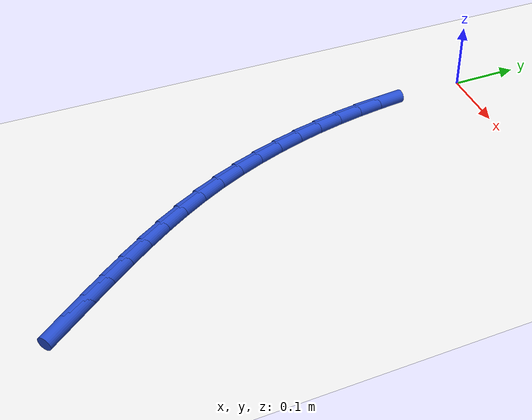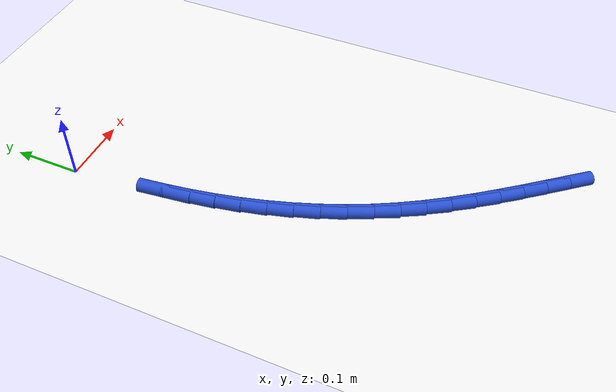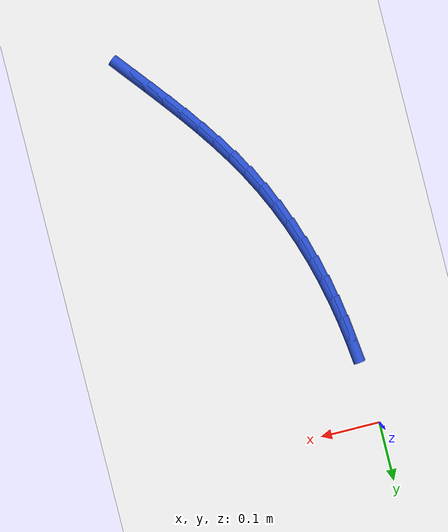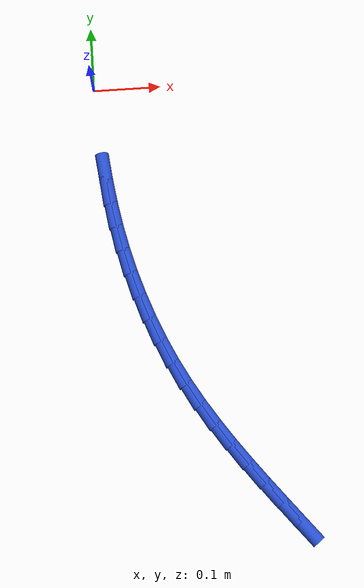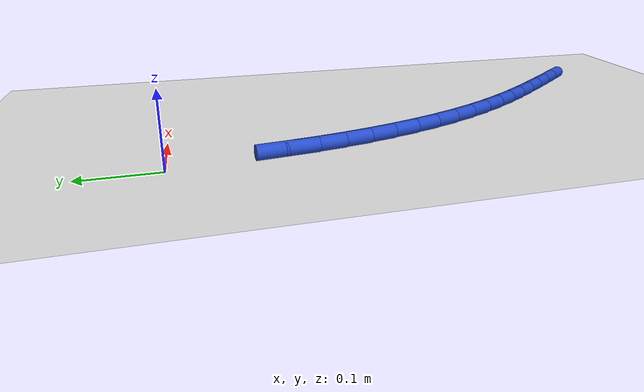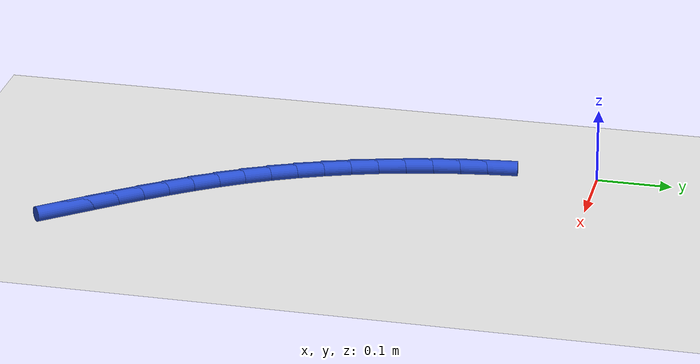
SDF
<sdf version="1.6">
 <world name="default">
  <model name="ground_plane">
   <static>1</static>
   <link name="link">
    <collision name="collision">
     <geometry><plane><normal>0 0 1</normal><size>100 100</size></plane></geometry>
     <surface><friction><ode><mu>100</mu><mu2>50</mu2></ode></friction></surface>
    </collision>
    <visual name="visual">
     <cast_shadows>0</cast_shadows>
     <geometry><plane><normal>0 0 1</normal><size>100 100</size></plane></geometry>
     <material>
      <script><uri>file://media/materials/scripts/gazebo.material</uri><name>Gazebo/WhiteGlow</name></script>
     </material>
    </visual>
   </link>
  </model>
  <model name="line">
   <link name="link_260">
    <pose>0.25572036706923806 -0.657555129363902 0.01 0 1.57 -0.8947461917824101</pose>
    <collision name="collision">
     <geometry><cylinder><radius>0.01</radius><length>0.08</length></cylinder></geometry>
    </collision>
    <visual name="visual">
     <material>
      <script><name>Gazebo/Blue</name><uri>file://media/materials/scripts/gazebo.material</uri></script>
     </material>
     <geometry><cylinder><radius>0.01</radius><length>0.08</length></cylinder></geometry>
    </visual>
   </link>
   <link name="link_261">
    <pose>0.23306710330647343 -0.6293144228550036 0.01 0 1.57 -0.9014041212720683</pose>
    <collision name="collision">
     <geometry><cylinder><radius>0.01</radius><length>0.08</length></cylinder></geometry>
    </collision>
    <visual name="visual">
     <material>
      <script><name>Gazebo/Blue</name><uri>file://media/materials/scripts/gazebo.material</uri></script>
     </material>
     <geometry><cylinder><radius>0.01</radius><length>0.08</length></cylinder></geometry>
    </visual>
   </link>
   <link name="link_262">
    <pose>0.21077574789263856 -0.6011426407575986 0.01 0 1.57 -0.9148824637788094</pose>
    <collision name="collision">
     <geometry><cylinder><radius>0.01</radius><length>0.08</length></cylinder></geometry>
    </collision>
    <visual name="visual">
     <material>
      <script><name>Gazebo/Blue</name><uri>file://media/materials/scripts/gazebo.material</uri></script>
     </material>
     <geometry><cylinder><radius>0.01</radius><length>0.08</length></cylinder></geometry>
    </visual>
   </link>
   <link name="link_263">
    <pose>0.18900741195402937 -0.5728565796653908 0.01 0 1.57 -0.9352562789747109</pose>
    <collision name="collision">
     <geometry><cylinder><radius>0.01</radius><length>0.08</length></cylinder></geometry>
    </collision>
    <visual name="visual">
     <material>
      <script><name>Gazebo/Blue</name><uri>file://media/materials/scripts/gazebo.material</uri></script>
     </material>
     <geometry><cylinder><radius>0.01</radius><length>0.08</length></cylinder></geometry>
    </visual>
   </link>
   <link name="link_264">
    <pose>0.16792320661694235 -0.5442730361720838 0.01 0 1.57 -0.9625222014452511</pose>
    <collision name="collision">
     <geometry><cylinder><radius>0.01</radius><length>0.08</length></cylinder></geometry>
    </collision>
    <visual name="visual">
     <material>
      <script><name>Gazebo/Blue</name><uri>file://media/materials/scripts/gazebo.material</uri></script>
     </material>
     <geometry><cylinder><radius>0.01</radius><length>0.08</length></cylinder></geometry>
    </visual>
   </link>
   <link name="link_265">
    <pose>0.14768424300767408 -0.5152088068713816 0.01 0 1.57 -0.9965681014558578</pose>
    <collision name="collision">
     <geometry><cylinder><radius>0.01</radius><length>0.08</length></cylinder></geometry>
    </collision>
    <visual name="visual">
     <material>
      <script><name>Gazebo/Blue</name><uri>file://media/materials/scripts/gazebo.material</uri></script>
     </material>
     <geometry><cylinder><radius>0.01</radius><length>0.08</length></cylinder></geometry>
    </visual>
   </link>
   <link name="link_266">
    <pose>0.1284516322525212 -0.48548068835698865 0.01 0 1.57 -1.0371371881875098</pose>
    <collision name="collision">
     <geometry><cylinder><radius>0.01</radius><length>0.08</length></cylinder></geometry>
    </collision>
    <visual name="visual">
     <material>
      <script><name>Gazebo/Blue</name><uri>file://media/materials/scripts/gazebo.material</uri></script>
     </material>
     <geometry><cylinder><radius>0.01</radius><length>0.08</length></cylinder></geometry>
    </visual>
   </link>
   <link name="link_267">
    <pose>0.11038648547778036 -0.45490547722260855 0.01 0 1.57 -1.0837422975340576</pose>
    <collision name="collision">
     <geometry><cylinder><radius>0.01</radius><length>0.08</length></cylinder></geometry>
    </collision>
    <visual name="visual">
     <material>
      <script><name>Gazebo/Blue</name><uri>file://media/materials/scripts/gazebo.material</uri></script>
     </material>
     <geometry><cylinder><radius>0.01</radius><length>0.08</length></cylinder></geometry>
    </visual>
   </link>
   <link name="link_268">
    <pose>0.09364901620964072 -0.4233020890899911 0.01 0 1.57 -1.1328584040187724</pose>
    <collision name="collision">
     <geometry><cylinder><radius>0.01</radius><length>0.08</length></cylinder></geometry>
    </collision>
    <visual name="visual">
     <material>
      <script><name>Gazebo/Blue</name><uri>file://media/materials/scripts/gazebo.material</uri></script>
     </material>
     <geometry><cylinder><radius>0.01</radius><length>0.08</length></cylinder></geometry>
    </visual>
   </link>
   <link name="link_269">
    <pose>0.07834462830460259 -0.3906188326439017 0.01 0 1.57 -1.1799150076556248</pose>
    <collision name="collision">
     <geometry><cylinder><radius>0.01</radius><length>0.08</length></cylinder></geometry>
    </collision>
    <visual name="visual">
     <material>
      <script><name>Gazebo/Blue</name><uri>file://media/materials/scripts/gazebo.material</uri></script>
     </material>
     <geometry><cylinder><radius>0.01</radius><length>0.08</length></cylinder></geometry>
    </visual>
   </link>
   <link name="link_270">
    <pose>0.06449321768974788 -0.35700588118464216 0.01 0 1.57 -1.2249581548641475</pose>
    <collision name="collision">
     <geometry><cylinder><radius>0.01</radius><length>0.08</length></cylinder></geometry>
    </collision>
    <visual name="visual">
     <material>
      <script><name>Gazebo/Blue</name><uri>file://media/materials/scripts/gazebo.material</uri></script>
     </material>
     <geometry><cylinder><radius>0.01</radius><length>0.08</length></cylinder></geometry>
    </visual>
   </link>
   <link name="link_271">
    <pose>0.0521072597634283 -0.32263092617942546 0.01 0 1.57 -1.2684291015712097</pose>
    <collision name="collision">
     <geometry><cylinder><radius>0.01</radius><length>0.08</length></cylinder></geometry>
    </collision>
    <visual name="visual">
     <material>
      <script><name>Gazebo/Blue</name><uri>file://media/materials/scripts/gazebo.material</uri></script>
     </material>
     <geometry><cylinder><radius>0.01</radius><length>0.08</length></cylinder></geometry>
    </visual>
   </link>
   <link name="link_272">
    <pose>0.041199229923994114 -0.28766165909546093 0.01 0 1.57 -1.3107552267894653</pose>
    <collision name="collision">
     <geometry><cylinder><radius>0.01</radius><length>0.08</length></cylinder></geometry>
    </collision>
    <visual name="visual">
     <material>
      <script><name>Gazebo/Blue</name><uri>file://media/materials/scripts/gazebo.material</uri></script>
     </material>
     <geometry><cylinder><radius>0.01</radius><length>0.08</length></cylinder></geometry>
    </visual>
   </link>
   <link name="link_273">
    <pose>0.03178160356979615 -0.25226577139995954 0.01 0 1.57 -1.352352076913477</pose>
    <collision name="collision">
     <geometry><cylinder><radius>0.01</radius><length>0.08</length></cylinder></geometry>
    </collision>
    <visual name="visual">
     <material>
      <script><name>Gazebo/Blue</name><uri>file://media/materials/scripts/gazebo.material</uri></script>
     </material>
     <geometry><cylinder><radius>0.01</radius><length>0.08</length></cylinder></geometry>
    </visual>
   </link>
   <link name="link_274">
    <pose>0.023866689177944437 -0.2166108263317282 0.01 0 1.57 -1.3922911503670263</pose>
    <collision name="collision">
     <geometry><cylinder><radius>0.01</radius><length>0.08</length></cylinder></geometry>
    </collision>
    <visual name="visual">
     <material>
      <script><name>Gazebo/Blue</name><uri>file://media/materials/scripts/gazebo.material</uri></script>
     </material>
     <geometry><cylinder><radius>0.01</radius><length>0.08</length></cylinder></geometry>
    </visual>
   </link>
   <link name="link_275">
    <pose>0.01740912182213997 -0.18082008259162463 0.01 0 1.57 -1.4273406889381015</pose>
    <collision name="collision">
     <geometry><cylinder><radius>0.01</radius><length>0.08</length></cylinder></geometry>
    </collision>
    <visual name="visual">
     <material>
      <script><name>Gazebo/Blue</name><uri>file://media/materials/scripts/gazebo.material</uri></script>
     </material>
     <geometry><cylinder><radius>0.01</radius><length>0.08</length></cylinder></geometry>
    </visual>
   </link>
   <link name="link_276">
    <pose>0.012221671024550967 -0.14490781818333714 0.01 0 1.57 -1.4567964126699822</pose>
    <collision name="collision">
     <geometry><cylinder><radius>0.01</radius><length>0.08</length></cylinder></geometry>
    </collision>
    <visual name="visual">
     <material>
      <script><name>Gazebo/Blue</name><uri>file://media/materials/scripts/gazebo.material</uri></script>
     </material>
     <geometry><cylinder><radius>0.01</radius><length>0.08</length></cylinder></geometry>
    </visual>
   </link>
  </model>
 </world>
</sdf>
